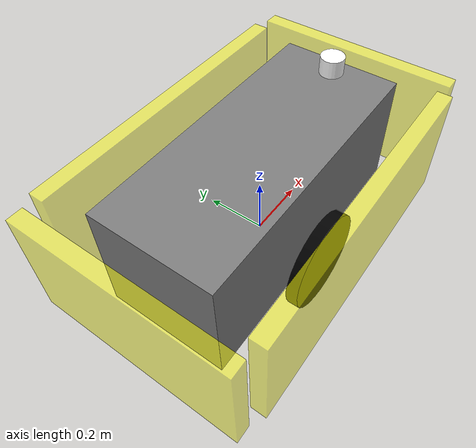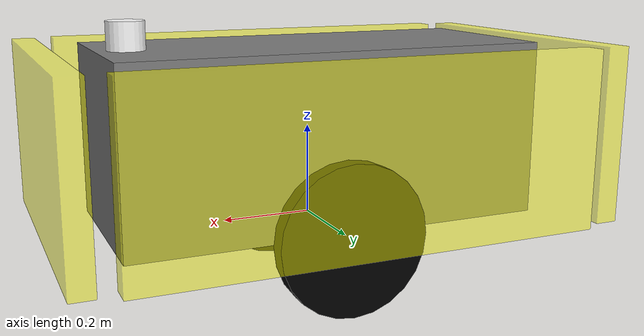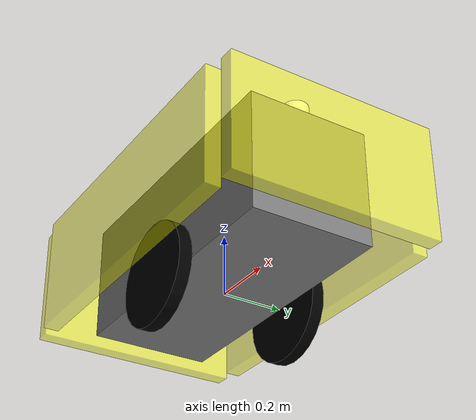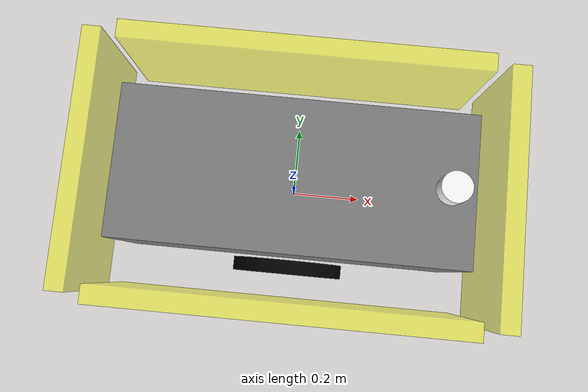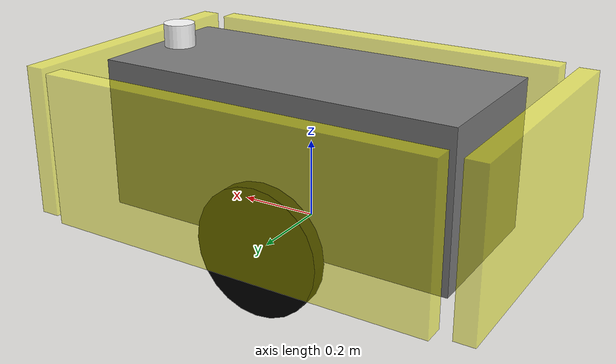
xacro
<?xml version="1.0"?>
<robot xmlns:xacro="http://www.ros.org//wiki/xacro">
    <xacro:include filename="inertial_macros.xacro"/>
    <material name ="white">
        <color rgba ="1 1 1 1"/>
    </material>

    <material name ="orange">
        <color rgba ="0.49 0.49 0.49 1"/>
    </material>
    <material name ="yellow">
        <color rgba ="1 1 0 0.5"/>
    </material>
    <material name ="blue">
        <color rgba ="0.2 0.2 1 1"/>
    </material>

    <material name ="black">
        <color rgba ="0 0 0 1"/>
    </material>

    <material name ="red">
        <color rgba ="1 0 0 1"/>
    </material>

    <xacro:property name="chassis_length" value="0.93"/>
    <xacro:property name="chassis_width" value="0.40"/>
    <xacro:property name="chassis_height" value="0.385"/>
    <xacro:property name="chassis_mass" value="10.0"/>
    <xacro:property name="wheel_radius" value="0.165"/>
    <xacro:property name="wheel_thickness" value="0.04"/>
    <xacro:property name="wheel_mass" value="1.0"/>
    <xacro:property name="wheel_offset_x" value="0.46"/>
    <xacro:property name="caster_wheel_radius" value="0.04"/>
    <xacro:property name="caster_wheel_mass" value="0.1"/>
    <xacro:property name="caster_wheel_offset_x" value="0.37"/>
    <xacro:property name="support_radius" value="0.04"/>
    <xacro:property name="support_length" value="0.25"/>
    <xacro:property name="support_x" value="0.04"/>
    <xacro:property name="support_mass" value="0.2"/>
    <xacro:property name="friction_coefficient_castor" value="0.0001"/>
    <xacro:property name="caster_wheel_z" value="${support_length/2}"/>

    <!-- BASE_FOOTPRINT LINK -->

    <joint name="base_footprint_joint" type="fixed">
        <parent link="base_link"/>
        <child link="base_footprint"/>
        <origin xyz="0 0 0" rpy="0 0 0"/>
    </joint>

    <link name="base_footprint">
    </link>

        <!-- BASE LINK -->
    <link name ="base_link">
    </link>
        <!-- CHASSIS LINK -->
    <joint name ="chassis_joint" type="fixed">
          <parent link="base_link"/>
          <child link="chassis"/>
          <origin xyz ="0 0 0"/>
    </joint>

    <link name ="chassis">
        <visual>
            <origin xyz ="0 0 ${chassis_height/2}"/>
            <geometry>
                <box size ="${chassis_length} ${chassis_width} ${chassis_height}"/>
            </geometry>
            <material name ="orange"/>
        </visual>
        <collision>
            <origin xyz ="0 0 ${chassis_height/2}"/>
            <geometry>
                <box size ="${chassis_length} ${chassis_width} ${chassis_height}"/>
            </geometry>
        </collision>
        <xacro:inertial_box mass="${chassis_mass}" x="${chassis_length}" y="${chassis_width}" z="${chassis_height}">
            <origin xyz="0 0 ${chassis_height}" rpy ="0 0 0"/>
        </xacro:inertial_box>
    </link>
    <gazebo reference ="chassis">
        <material> Gazebo/Grey</material>
    </gazebo>

            <!-- front Bumper -->
    <joint name="front_bumper_joint" type="fixed">
        <parent link="chassis"/>
        <child link="front_bumper"/>
        <origin xyz="${chassis_length/2 + 0.20/2} 0 0"/>
    </joint>

    <link name="front_bumper">

        <visual>
            <origin xyz ="0 0 0.1925"/>
            <geometry>
                <box size="0.05
                        0.69
                        0.385"/>
            </geometry>
            <material name="yellow"/>
        </visual>

        <collision>
            <origin xyz ="0 0 0.1925"/>
            <geometry>
                <box size="0.05
                        0.69
                        0.385"/>
            </geometry>
        </collision>

    </link>

            <!-- Back Bumper -->
    <joint name="back_bumper_joint" type="fixed">
        <parent link="chassis"/>
        <child link="back_bumper"/>
        <origin xyz="${-chassis_length/2 - 0.20/2} 0 0"/>
    </joint>

    <link name="back_bumper">

        <visual>
            <origin xyz ="0 0 0.1925"/>
            <geometry>
                <box size="0.05
                        0.69
                        0.385"/>
            </geometry>
            <material name="yellow"/>
        </visual>

        <collision>
            <origin xyz ="0 0 0.1925"/>
            <geometry>
                <box size="0.05
                        0.69
                        0.385"/>
            </geometry>
        </collision>

    </link>

            <!-- left Bumper -->
    <joint name="left_bumper_joint" type="fixed">
        <parent link="chassis"/>
        <child link="left_bumper"/>
        <origin xyz="0 ${chassis_width/2 + 0.29/2} 0"/>
    </joint>

    <link name="left_bumper">

        <visual>
            <origin xyz ="0 0 0.1925"/>
            <geometry>
                <box size="1
                        0.05
                        0.385"/>
            </geometry>
            <material name="yellow"/>
        </visual>

        <collision>
            <origin xyz ="0 0 0.1925"/>
            <geometry>
                <box size="1
                        0.05
                        0.385"/>
            </geometry>
        </collision>

    </link>

    <!-- RIght Bumper -->
    <joint name="right_bumper_joint" type="fixed">
        <parent link="chassis"/>
        <child link="right_bumper"/>
        <origin xyz="0 ${-chassis_width/2 - 0.29/2} 0"/>
    </joint>

    <link name="right_bumper">

        <visual>
            <origin xyz ="0 0 0.1925"/>
            <geometry>
                <box size="1
                        0.05
                        0.385"/>
            </geometry>
            <material name="yellow"/>
        </visual>

        <collision>
            <origin xyz ="0 0 0.1925"/>
            <geometry>
                <box size="1
                        0.05
                        0.385"/>
            </geometry>
        </collision>

    </link>

            <!-- LEFT WHEEL LINK -->
    <joint name ="left_wheel_joint" type ="continuous">
        <parent link="chassis"/>
        <child link ="left_wheel"/>
        <origin xyz ="0 ${wheel_offset_x/2} 0" rpy="-${pi/2} 0 0"/>
        <axis xyz ="0 0 1"/>
    </joint>

    <link name ="left_wheel">
        <visual>
            <origin xyz ="0 -0.0 0"/>
            <geometry>
                <cylinder radius="${wheel_radius}" length ="${wheel_thickness}"/>   ##
            </geometry>
            <material name ="black"/>
        </visual>
        <collision>
            <origin xyz ="0 -0.165 0"/>
            <geometry>
                <cylinder radius="${wheel_radius}" length ="${wheel_thickness}"/>
            </geometry>
        </collision>
        <xacro:inertial_cylinder mass="${wheel_mass}" length="${wheel_thickness}" radius ="${wheel_radius}">
            <origin xyz ="0 0 0" rpy =" 0 0 0"/>
        </xacro:inertial_cylinder>
    </link>
    <gazebo reference ="left_wheel">
        <material> Gazebo/Black</material>
    </gazebo>

            <!-- RIGHT WHEEL LINK -->
    <joint name ="right_wheel_joint" type ="continuous">
        <parent link="chassis"/>
        <child link ="right_wheel"/>
        <origin xyz ="0 ${-wheel_offset_x/2} 0" rpy="-${pi/2} 0 0"/>
        <axis xyz ="0 0 1"/>
    </joint>

    <link name ="right_wheel">
        <visual>
            <origin xyz ="0 -0.0 0"/>
            <geometry>
                <cylinder radius="${wheel_radius}" length ="${wheel_thickness}"/>
            </geometry>
            <material name ="black"/>
        </visual>
        <collision>
            <origin xyz ="0 -0.165 0"/>
            <geometry>
                <cylinder radius="${wheel_radius}" length ="${wheel_thickness}"/>
            </geometry>
        </collision>
        <xacro:inertial_cylinder mass="${wheel_mass}" length="${wheel_thickness}" radius ="${wheel_radius}">
            <origin xyz ="0 0 0" rpy =" 0 0 0"/>
        </xacro:inertial_cylinder>
    </link>
    <gazebo reference ="right_wheel">
        <material> Gazebo/Black</material>
    </gazebo>

    <!-- GPS SENSOR LINK -->
    <joint name="gps_joint" type="fixed">
        <parent link="chassis"/>
        <child link="gps_link"/>
        <!-- Mounted near the front/center, clear of obstacles -->
        <origin xyz="0.40 0.0 ${chassis_height+0.03}" rpy="0 0 0"/>
    </joint>

    <link name="gps_link">
        <visual>
            <geometry>
                <cylinder radius="0.04" length="0.06"/> <!-- Standard puck style visual -->
            </geometry>
            <material name="white"/>
        </visual>
    </link>

</robot>
